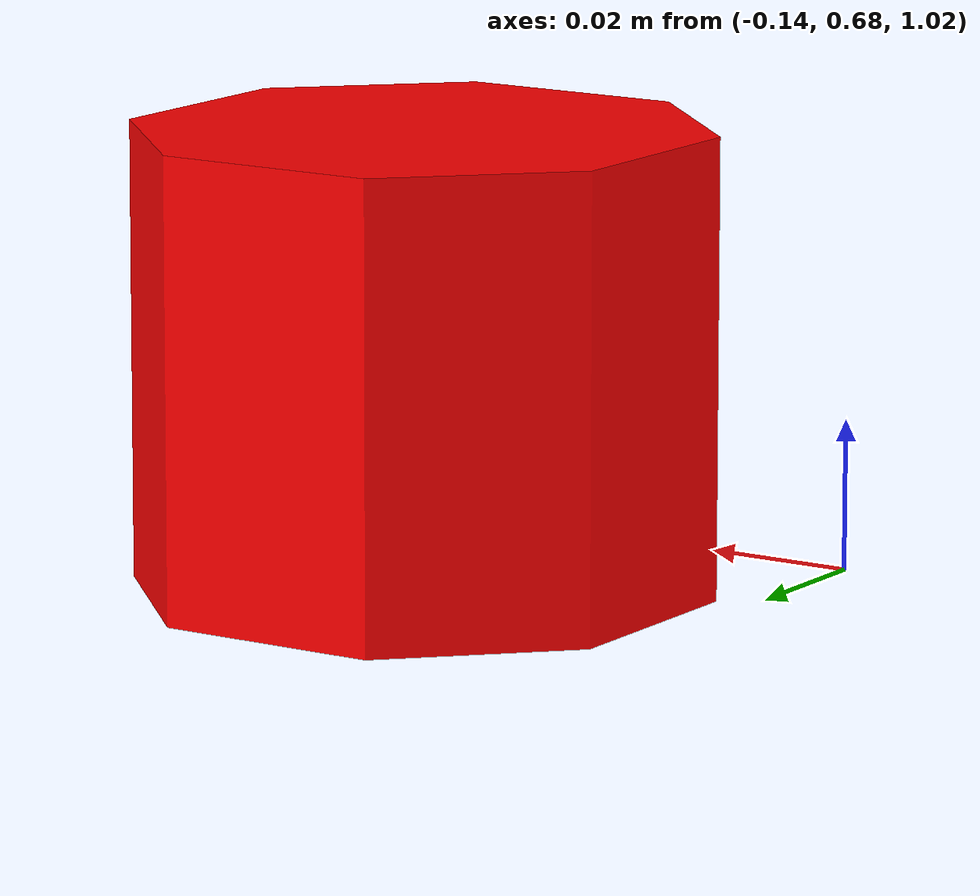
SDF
<?xml version='1.0'?>
<sdf version="1.4">
    <model name='unit_box_3'>
        <pose frame=''>-0.1 0.719858 1.05 0 -0 0</pose>
        <link name='link'>
            <inertial>
                <mass>1</mass>
                <inertia>
                    <ixx>0.166667</ixx>
                    <ixy>0</ixy>
                    <ixz>0</ixz>
                    <iyy>0.166667</iyy>
                    <iyz>0</iyz>
                    <izz>0.166667</izz>
                </inertia>
            </inertial>
            <collision name='collision'>
                <geometry>
                    <mesh>
                        <scale>0.001 0.001 0.001</scale>
                        <uri>
                            /home/robotics/catkin_ws/src/AI-robot-control/Pickbot/pickbot_simulation/worlds/shapes/shape_03.stl
                        </uri>
                    </mesh>
                </geometry>
                <max_contacts>10</max_contacts>
                <surface>
                    <contact>
                        <ode/>
                    </contact>
                    <bounce/>
                    <friction>
                        <torsional>
                            <ode/>
                        </torsional>
                        <ode/>
                    </friction>
                </surface>
            </collision>
            <visual name='visual'>
                <geometry>
                    <mesh>
                        <scale>1 1 1</scale>
                        <uri>
                            /home/robotics/catkin_ws/src/AI-robot-control/Pickbot/pickbot_simulation/worlds/shapes/shape_03.dae
                        </uri>
                    </mesh>
                </geometry>
            </visual>
            <self_collide>0</self_collide>
            <kinematic>0</kinematic>
            <gravity>1</gravity>
        </link>
    </model>
</sdf>
